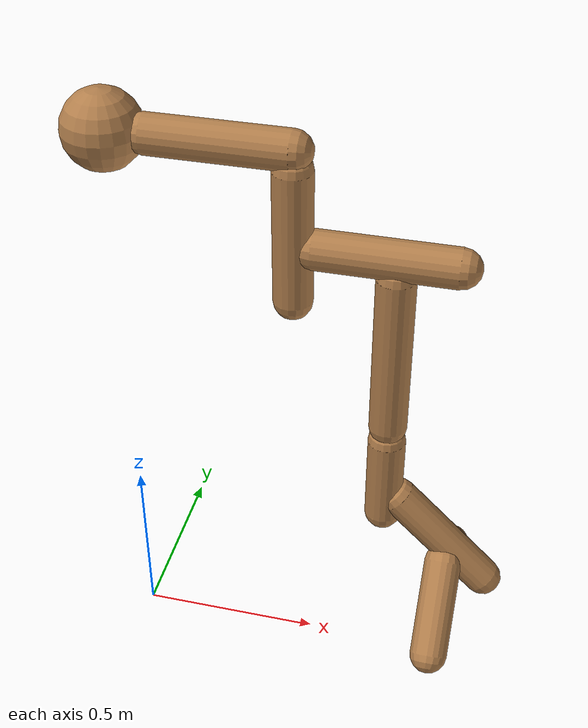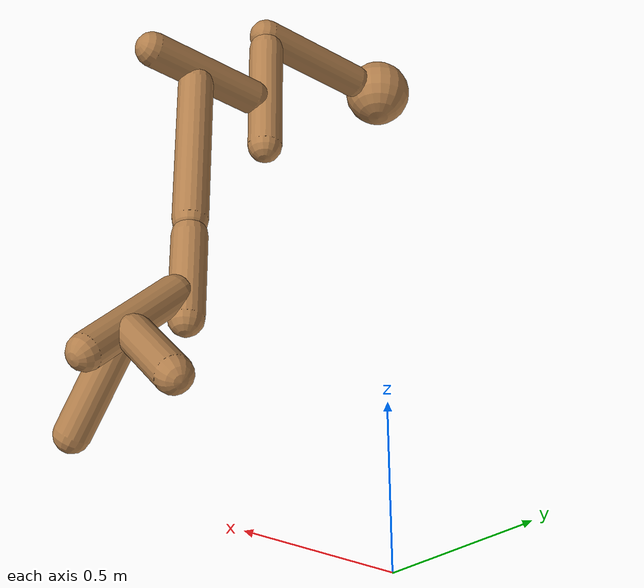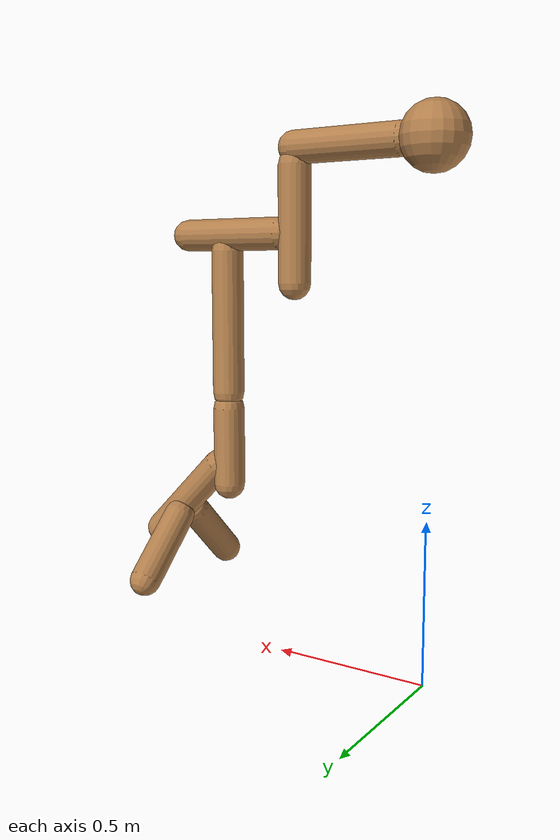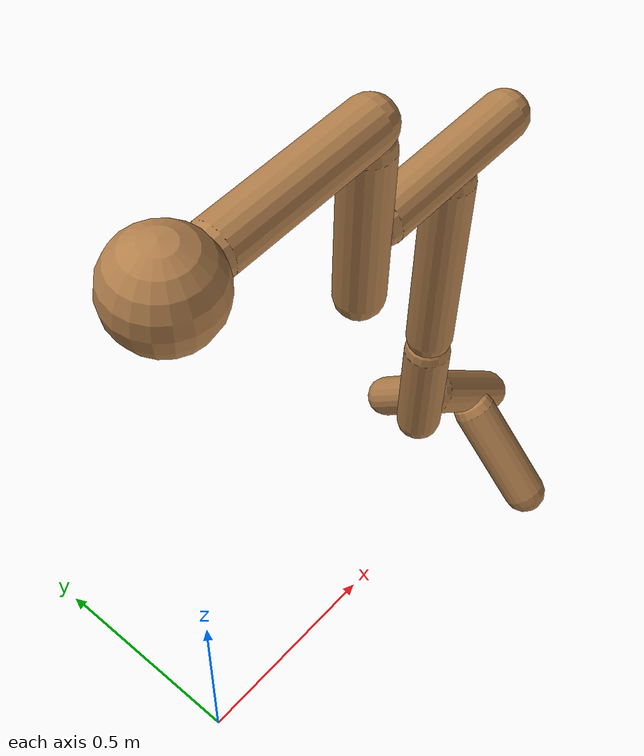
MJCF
<?xml version='1.0' encoding='UTF-8'?>
<!-- Universal Animal Template: unimal -->
<mujoco model="unimal">
  <compiler angle="degree"/>
  <size njmax="2000" nconmax="500"/>
  <option timestep=".005">
    <flag filterparent="disable"/>
  </option>
  <!-- Common defaults to make search space tractable -->
  <default>
    <!-- Define motor defaults -->
    <motor ctrlrange="-1 1" ctrllimited="true"/>
    <!-- Define joint defaults -->
    <default class="normal_joint">
      <joint type="hinge" damping="1" stiffness="1" armature="1" limited="true" range="-120 120" solimplimit="0 0.99 0.01"/>
    </default>
    <default class="walker_joint">
      <joint type="hinge" damping="0.2" stiffness="1" armature=".01" limited="true" range="-120 120" solimplimit="0 0.99 0.01"/>
    </default>
    <default class="stiff_joint">
      <joint type="hinge" damping="5" stiffness="10" armature=".01" limited="true" solimplimit="0 0.99 0.01"/>
    </default>
    <default class="free">
      <joint limited="false" damping="0" armature="0" stiffness="0"/>
    </default>
    <default class="growth_site">
      <site size="1e-6 1e-6 1e-6"/>
    </default>
    <default class="torso_growth_site">
      <site size="1e-6 1e-6 1e-6"/>
    </default>
    <default class="mirror_growth_site">
      <site size="1e-6 1e-6 1e-6"/>
    </default>
    <default class="btm_pos_site">
      <site size="1e-6 1e-6 1e-6"/>
    </default>
    <default class="box_face_site">
      <site size="1e-6 1e-6 1e-6"/>
    </default>
    <default class="imu_vel">
      <site type="box" size="0.05" rgba="1 0 0 0"/>
    </default>
    <default class="touch_site">
      <site group="3" rgba="0 0 1 .3"/>
    </default>
    <default class="food_site">
      <site material="food" size="0.15"/>
    </default>
    <!-- Define geom defaults -->
    <geom type="capsule" condim="3" friction="0.7 0.1 0.1" material="self"/>
  </default>
  <worldbody>
    <light diffuse="1 1 1" directional="true" exponent="1" pos="0 0 8" specular="0.1 0.1 0.1" dir="0 0 -1"/>
    <!-- Programatically generated xml goes here -->
    <body name="torso/0" pos="0 0 1.58">
      <joint name="root" type="free" class="free"/>
      <site name="root" class="imu_vel"/>
      <geom name="torso/0" type="sphere" size="0.1" condim="3" density="900"/>
      <camera name="side" pos="0 -7 2" xyaxes="1 0 0 0 1 2" mode="trackcom"/>
      <site name="torso/0" class="growth_site" pos="0 0 0"/>
      <site name="torso/btm_pos/0" class="btm_pos_site" pos="0 0 -0.1"/>
      <site name="torso/touch/0" class="touch_site" size="0.11"/>
      <site name="torso/vertical/0" class="torso_growth_site" pos="0 0 -0.1"/>
      <body name="limb/1" pos="0.1 0.0 0.0">
        <joint name="limbx/1" type="hinge" class="normal_joint" range="-30 30" pos="-0.05 0.0 0.0" axis="0.0 0.0 1.0"/>
        <joint name="limby/1" type="hinge" class="normal_joint" range="-60 30" pos="-0.05 0.0 0.0" axis="-0.0 1.0 0.0"/>
        <geom name="limb/1" type="capsule" fromto="0.0 0.0 0.0 0.35 0.0 0.0" size="0.05" density="900"/>
        <site name="limb/mid/1" class="growth_site" pos="0.2 0.0 0.0"/>
        <site name="limb/btm/1" class="growth_site" pos="0.35 0.0 0.0"/>
        <site name="limb/btm_pos/1" class="btm_pos_site" pos="0.35 0.0 0.0"/>
        <site name="limb/touch/1" class="touch_site" size="0.060000000000000005" fromto="0.0 0.0 0.0 0.35 0.0 0.0" type="capsule"/>
        <body name="limb/10" pos="0.35 0.0 -0.05">
          <joint name="limbx/10" type="hinge" class="normal_joint" range="-30 30" pos="0.0 0.0 0.05" axis="1.0 0.0 0.0"/>
          <joint name="limby/10" type="hinge" class="normal_joint" range="-30 0" pos="0.0 0.0 0.05" axis="0.0 1.0 0.0"/>
          <geom name="limb/10" type="capsule" fromto="0.0 0.0 0.0 0.0 0.0 -0.35" size="0.05" density="900"/>
          <site name="limb/mid/10" class="growth_site" pos="0.0 0.0 -0.2"/>
          <site name="limb/btm/10" class="growth_site" pos="0.0 0.0 -0.35"/>
          <site name="limb/btm_pos/10" class="btm_pos_site" pos="0.0 0.0 -0.35"/>
          <site name="limb/touch/10" class="touch_site" size="0.060000000000000005" fromto="0.0 0.0 0.0 0.0 0.0 -0.35" type="capsule"/>
          <body name="limb/17" pos="0.05 0.0 -0.2">
            <joint name="limby/17" type="hinge" class="normal_joint" range="-60 30" pos="-0.05 0.0 0.0" axis="-0.0 1.0 0.0"/>
            <geom name="limb/17" type="capsule" fromto="0.0 0.0 0.0 0.35 0.0 0.0" size="0.05" density="900"/>
            <site name="limb/mid/17" class="growth_site" pos="0.2 0.0 0.0"/>
            <site name="limb/btm/17" class="growth_site" pos="0.35 0.0 0.0"/>
            <site name="limb/btm_pos/17" class="btm_pos_site" pos="0.35 0.0 0.0"/>
            <site name="limb/touch/17" class="touch_site" size="0.060000000000000005" fromto="0.0 0.0 0.0 0.35 0.0 0.0" type="capsule"/>
            <body name="limb/19" pos="0.2 0.0 -0.05">
              <joint name="limby/19" type="hinge" class="normal_joint" range="-60 30" pos="0.0 0.0 0.05" axis="0.0 1.0 0.0"/>
              <geom name="limb/19" type="capsule" fromto="0.0 0.0 0.0 0.0 0.0 -0.45" size="0.05" density="900"/>
              <site name="limb/mid/19" class="growth_site" pos="0.0 0.0 -0.25"/>
              <site name="limb/btm/19" class="growth_site" pos="0.0 0.0 -0.45"/>
              <site name="limb/btm_pos/19" class="btm_pos_site" pos="0.0 0.0 -0.5"/>
              <site name="limb/touch/19" class="touch_site" size="0.060000000000000005" fromto="0.0 0.0 0.0 0.0 0.0 -0.45" type="capsule"/>
              <body name="limb/20" pos="0.0 0.0 -0.5">
                <joint name="limbx/20" type="hinge" class="normal_joint" range="0 30" pos="0.0 0.0 0.05" axis="1.0 0.0 0.0"/>
                <joint name="limby/20" type="hinge" class="normal_joint" range="0 60" pos="0.0 0.0 0.05" axis="0.0 1.0 0.0"/>
                <geom name="limb/20" type="capsule" fromto="0.0 0.0 0.0 0.0 0.0 -0.25" size="0.05" density="900"/>
                <site name="limb/mid/20" class="growth_site" pos="0.0 0.0 -0.15"/>
                <site name="limb/btm/20" class="growth_site" pos="0.0 0.0 -0.25"/>
                <site name="limb/btm_pos/20" class="btm_pos_site" pos="0.0 0.0 -0.3"/>
                <site name="limb/touch/20" class="touch_site" size="0.060000000000000005" fromto="0.0 0.0 0.0 0.0 0.0 -0.25" type="capsule"/>
                <body name="limb/21" pos="0.04 0.0 -0.19">
                  <joint name="limby/21" type="hinge" class="normal_joint" range="-45 45" pos="-0.04 0.0 0.04" axis="-0.0 1.0 0.0"/>
                  <geom name="limb/21" type="capsule" fromto="0.0 0.0 0.0 0.25 0.0 -0.25" size="0.05" density="900"/>
                  <site name="limb/mid/21" class="growth_site" pos="0.14 0.0 -0.14"/>
                  <site name="limb/btm/21" class="growth_site" pos="0.25 0.0 -0.25"/>
                  <site name="limb/btm_pos/21" class="btm_pos_site" pos="0.28 0.0 -0.28"/>
                  <site name="limb/touch/21" class="touch_site" size="0.060000000000000005" fromto="0.0 0.0 0.0 0.25 0.0 -0.25" type="capsule"/>
                  <body name="limb/24" pos="0.14 0.04 -0.18000000000000002">
                    <joint name="limbx/24" type="hinge" class="normal_joint" range="-90 0" pos="0.0 -0.04 0.04" axis="1.0 0.0 0.0"/>
                    <joint name="limby/24" type="hinge" class="normal_joint" range="0 90" pos="0.0 -0.04 0.04" axis="0.0 0.7071 0.7071"/>
                    <geom name="limb/24" type="capsule" fromto="0.0 0.0 0.0 0.0 0.18 -0.18" size="0.05" density="900"/>
                    <site name="limb/mid/24" class="mirror_growth_site" pos="0.0 0.11 -0.11"/>
                    <site name="limb/btm/24" class="mirror_growth_site" pos="0.0 0.18 -0.18"/>
                    <site name="limb/btm_pos/24" class="btm_pos_site" pos="0.0 0.21 -0.21"/>
                    <site name="limb/touch/24" class="touch_site" size="0.060000000000000005" fromto="0.0 0.0 0.0 0.0 0.18 -0.18" type="capsule"/>
                  </body>
                  <body name="limb/25" pos="0.14 -0.04 -0.18000000000000002">
                    <joint name="limbx/25" type="hinge" class="normal_joint" range="-90 0" pos="0.0 0.04 0.04" axis="1.0 0.0 -0.0"/>
                    <joint name="limby/25" type="hinge" class="normal_joint" range="0 90" pos="0.0 0.04 0.04" axis="-0.0 0.7071 -0.7071"/>
                    <geom name="limb/25" type="capsule" fromto="0.0 0.0 0.0 0.0 -0.18 -0.18" size="0.05" density="900"/>
                    <site name="limb/mid/25" class="mirror_growth_site" pos="0.0 -0.11 -0.11"/>
                    <site name="limb/btm/25" class="mirror_growth_site" pos="0.0 -0.18 -0.18"/>
                    <site name="limb/btm_pos/25" class="btm_pos_site" pos="0.0 -0.21 -0.21"/>
                    <site name="limb/touch/25" class="touch_site" size="0.060000000000000005" fromto="0.0 0.0 0.0 0.0 -0.18 -0.18" type="capsule"/>
                  </body>
                </body>
              </body>
            </body>
          </body>
        </body>
      </body>
    </body>
  </worldbody>
  <actuator>
    <motor joint="limbx/1" gear="250" name="limbx/1"/>
    <motor joint="limby/1" gear="300" name="limby/1"/>
    <motor joint="limbx/10" gear="200" name="limbx/10"/>
    <motor joint="limby/10" gear="300" name="limby/10"/>
    <motor joint="limby/17" gear="250" name="limby/17"/>
    <motor joint="limby/19" gear="300" name="limby/19"/>
    <motor joint="limbx/20" gear="150" name="limbx/20"/>
    <motor joint="limby/20" gear="250" name="limby/20"/>
    <motor joint="limby/21" gear="150" name="limby/21"/>
    <motor joint="limbx/24" gear="250" name="limbx/24"/>
    <motor joint="limby/24" gear="200" name="limby/24"/>
    <motor joint="limbx/25" gear="250" name="limbx/25"/>
    <motor joint="limby/25" gear="200" name="limby/25"/>
  </actuator>
  <sensor>
    <accelerometer name="torso_accel" site="root"/>
    <gyro name="torso_gyro" site="root"/>
    <velocimeter name="torso_vel" site="root"/>
    <subtreeangmom name="unimal_am" body="torso/0"/>
    <touch name="torso/0" site="torso/touch/0"/>
    <touch name="limb/1" site="limb/touch/1"/>
    <touch name="limb/10" site="limb/touch/10"/>
    <touch name="limb/17" site="limb/touch/17"/>
    <touch name="limb/19" site="limb/touch/19"/>
    <touch name="limb/20" site="limb/touch/20"/>
    <touch name="limb/21" site="limb/touch/21"/>
    <touch name="limb/24" site="limb/touch/24"/>
    <touch name="limb/25" site="limb/touch/25"/>
  </sensor>
  <!-- Add hfield assets -->
  <asset/>
  <!-- List of contacts to exclude -->
  <contact>
    <exclude name="limb/24:limb/25" body1="limb/24" body2="limb/25"/>
  </contact>
  <!-- Define material, texture etc -->
  <asset>
    <material name="grid" texture="grid" texrepeat="1 1" texuniform="true" reflectance="0.1"/>
    <material name="hfield" texture="hfield" texrepeat="1 1" texuniform="true" reflectance="0.1"/>
    <material name="wall" texture="wall" texrepeat="1 1" texuniform="true" reflectance=".5"/>
    <material name="platform" texture="platform" texrepeat="1 1" texuniform="true" reflectance=".5"/>
    <material name="boundary" texture="boundary" texrepeat="1 1" texuniform="true" reflectance=".5"/>
    <material name="jump" texture="jump" texrepeat="1 1" texuniform="true" reflectance=".5"/>
    <material name="goal" rgba="1 0 0 1"/>
    <material name="food" rgba="0 0 1 1" emission="1"/>
    <material name="init_position" rgba="0 1 0 0.7"/>
    <material name="self" rgba=".7 .5 .3 1"/>
    <material name="self_invisible" rgba=".7 .5 .3 0"/>
    <material name="self_default" rgba=".7 .5 .3 1"/>
    <material name="self_highlight" rgba="0 .5 .3 1"/>
    <material name="effector" rgba=".7 .4 .2 1"/>
    <material name="effector_default" rgba=".7 .4 .2 1"/>
    <material name="effector_highlight" rgba="0 .5 .3 1"/>
    <material name="decoration" rgba=".3 .5 .7 1"/>
    <material name="eye" rgba="0 .2 1 1"/>
    <material name="target" rgba=".6 .3 .3 1"/>
    <material name="target_default" rgba=".6 .3 .3 1"/>
    <material name="target_highlight" rgba=".6 .3 .3 .4"/>
    <material name="site" rgba=".5 .5 .5 .3"/>
    <material name="ball" texture="ball"/>
  </asset>
  <asset>
    <texture name="grid" type="2d" builtin="checker" rgb1="0.4 0.4 0.4" rgb2="0.4 0.4 0.4" width="300" height="300" mark="edge" markrgb="0.2 0.2 0.2"/>
    <texture name="hfield" type="2d" builtin="checker" rgb1="0.4 0.4 0.4" rgb2="0.4 0.4 0.4" width="300" height="300" mark="edge" markrgb="0.2 0.2 0.2"/>
    <texture name="wall" type="2d" builtin="flat" rgb1="0.9 0.7 0" rgb2="0.9 0.7 0" width="300" height="300"/>
    <texture name="platform" type="2d" builtin="flat" rgb1="0.3 0 0.8" rgb2="0.3 0 0.8" width="300" height="300"/>
    <texture name="boundary" type="2d" builtin="flat" rgb1="0.3 0.3 0.3" rgb2="0.3 0.3 0.3" width="300" height="300"/>
    <texture name="jump" type="2d" builtin="flat" rgb1="0.3 0.3 0.3" rgb2="0.3 0.3 0.3" width="300" height="300"/>
    <texture name="skybox" type="skybox" builtin="gradient" rgb1="1 1 1" rgb2="0.6 0.6 0.6" width="800" height="800"/>
    <texture name="ball" builtin="checker" mark="cross" width="151" height="151" rgb1="0.1 0.1 0.1" rgb2="0.9 0.9 0.9" markrgb="1 1 1"/>
  </asset>
  <visual>
    <headlight ambient="0.6 0.6 0.6" diffuse="0.3 0.3 0.3" specular="0 0 0"/>
    <map znear=".01" shadowclip="0.5"/>
    <quality shadowsize="16384"/>
  </visual>
</mujoco>
